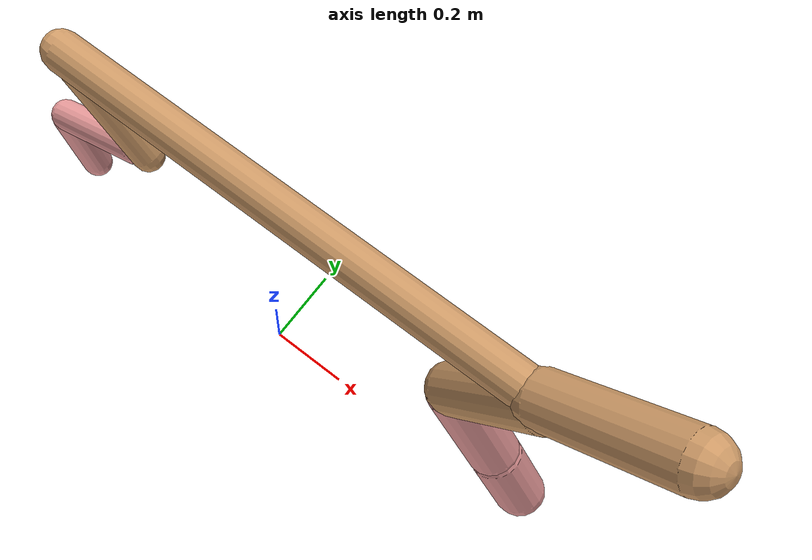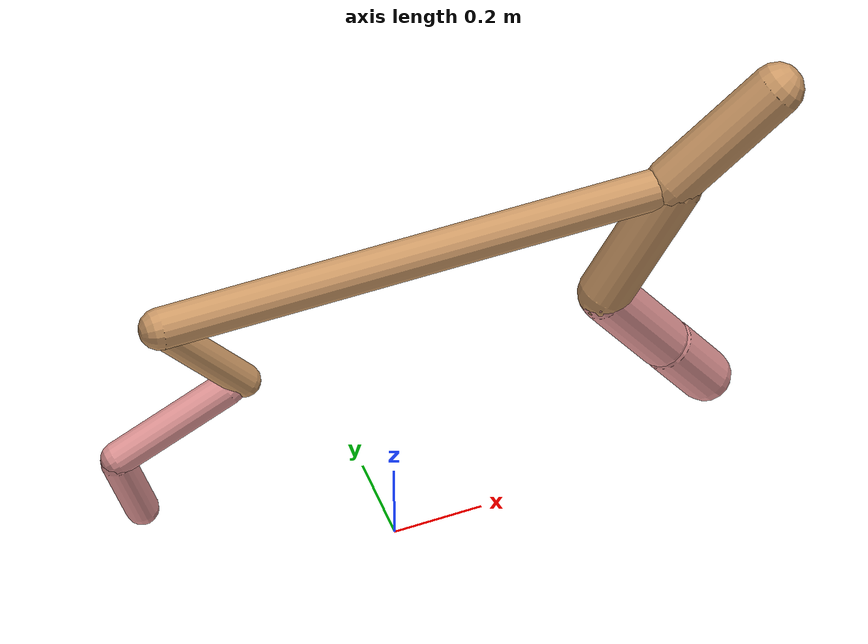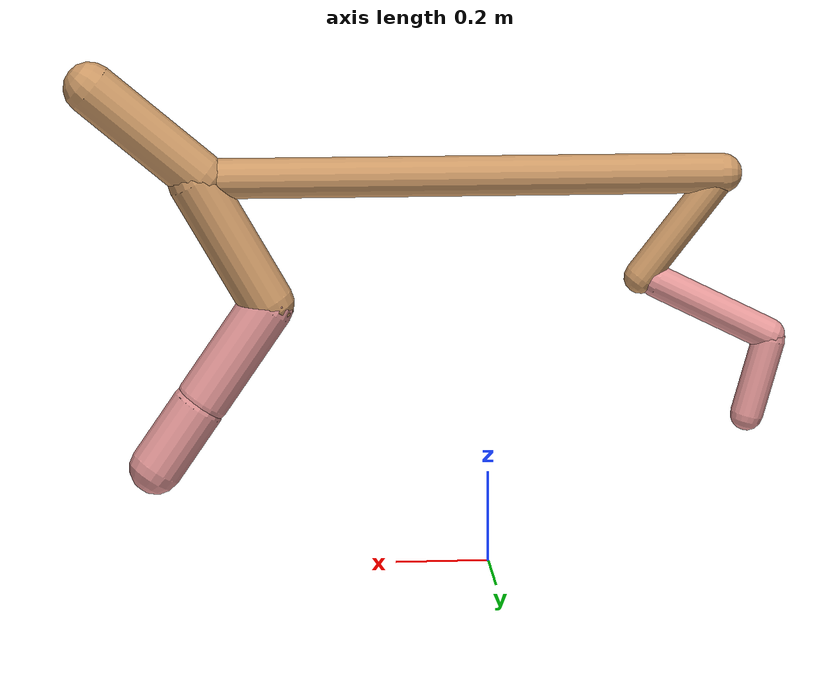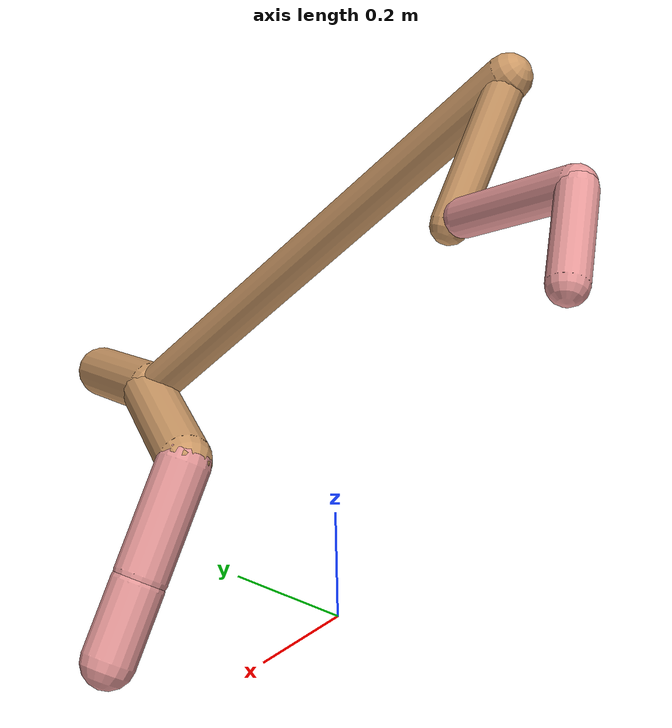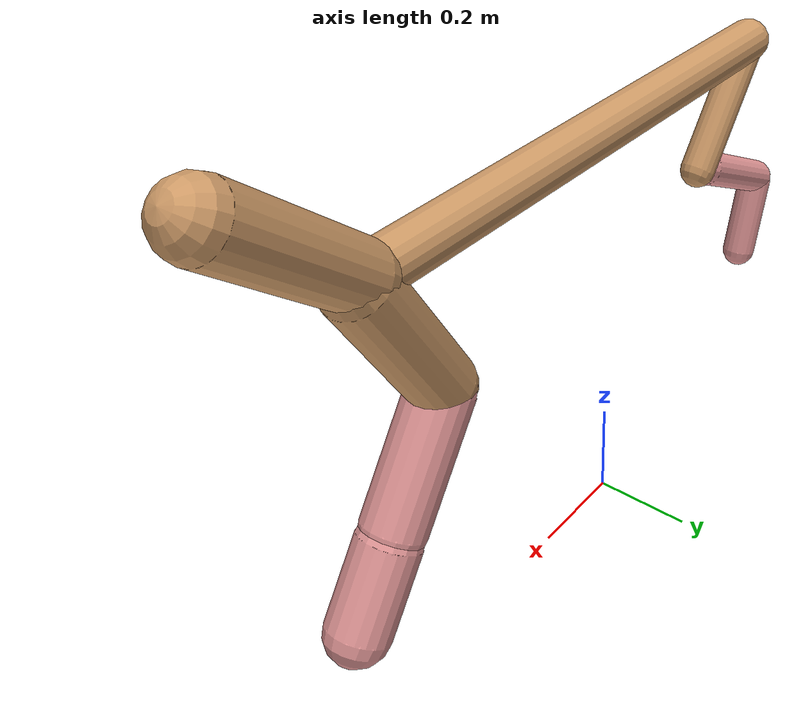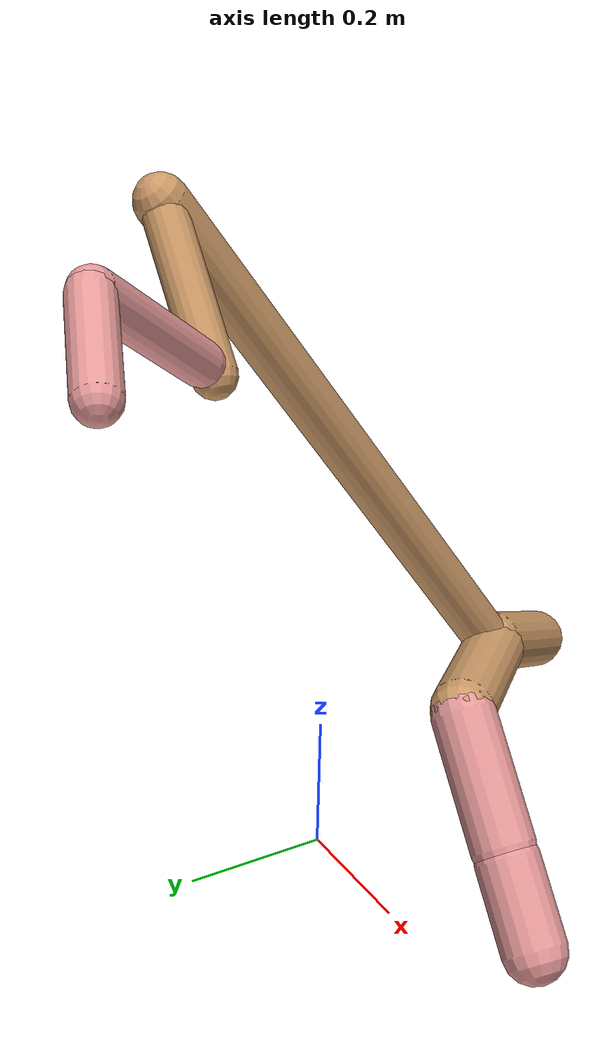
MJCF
<mujoco model="cheetah">
  <compiler angle="radian" coordinate="local" inertiafromgeom="true" settotalmass="14" />
  <default>
    <joint armature=".1" damping=".01" limited="true" solimplimit="0 .8 .03" solreflimit=".02 1" stiffness="8" />
    <geom conaffinity="0" condim="3" contype="1" friction="0.8 .1 .1" rgba="0.8 0.6 .4 1" solimp="0.0 0.8 0.01" solref="0.02 1" />
    <motor ctrllimited="true" ctrlrange="-1 1" />
  </default>
  <size nstack="300000" nuser_geom="1" />
  <option gravity="0 0 -9.81" timestep="0.01" />
  <worldbody>
    <body name="torso" pos="0.0 0.0 0.8496358774039359">
      <joint armature="0" axis="1 0 0" damping="0" limited="false" name="ignorex" pos="0 0 0" stiffness="0" type="slide" />
      <joint armature="0" axis="0 0 1" damping="0" limited="false" name="ignorez" pos="0 0 0" stiffness="0" type="slide" />
      <joint armature="0" axis="0 1 0" damping="0" limited="false" name="ignorey" pos="0 0 0" stiffness="0" type="hinge" />
      <geom fromto="-0.5 0.0 0.0 0.6322019904906283 0.0 0.0" name="torso" size="0.0435943447959098" type="capsule" />
      <geom axisangle="0 1 0 .87" name="head" pos="0.7322019904906284 0.0 0.1" size="0.057013990068145656 0.15" type="capsule" />

      <body name="bthigh" pos="-.5 0 0">
        <joint axis="0 1 0" damping="6" name="bthigh" pos="0 0 0" range="-.52 1.05" stiffness="240" type="hinge" />
        <geom axisangle="0 1 0 -3.8" name="bthigh" pos="0.09228289977257732 0.0 -0.11996776970435052" size="0.03597926622721621 0.13234301455223108" type="capsule" />
        <body name="bshin" pos="0.14456579954515464 0.0 -0.22993553940870104">
          <joint axis="0 1 0" damping="4.5" name="bshin" pos="0 0 0" range="-.785 .785" stiffness="180" type="hinge" />
          <geom axisangle="0 1 0 -2.03" name="bshin" pos="-0.12828887730285368 0.0 -0.06414443865142684" rgba="0.9 0.6 0.6 1" size="0.03597926622721621 0.13690656677817006" type="capsule" />
          <body name="bfoot" pos="-0.25657775460570736 0.0 -0.12828887730285368">
            <joint axis="0 1 0" damping="3" name="bfoot" pos="0 0 0" range="-.4 .785" stiffness="120" type="hinge" />
            <geom axisangle="0 1 0 -.27" name="bfoot" pos="0.027575606466010982 0.0 -0.08916112757343551" rgba="0.9 0.6 0.6 1" size="0.03597926622721621 0.08579478184765325" type="capsule" />
            <inertial mass="10" />
          </body>
        </body>
      </body>
      <body name="fthigh" pos="0.6322019904906284 0.0 0.0">
        <joint axis="0 1 0" damping="4.5" name="fthigh" pos="0 0 0" range="-1.5 0.8" stiffness="180" type="hinge" />
        <geom axisangle="0 1 0 .52" name="fthigh" pos="-0.08048935704954127 0.0 -0.13798175494207074" size="0.058332062823192164 0.1538175436137275" type="capsule" />
        <body name="fshin" pos="-0.16097871409908254 0.0 -0.2759635098841415">
          <joint axis="0 1 0" damping="3" name="fshin" pos="0 0 0" range="-1.2 1.1" stiffness="120" type="hinge" />
          <geom axisangle="0 1 0 -.6" name="fshin" pos="0.07471412304397385 0.0 -0.10345032421473302" rgba="0.9 0.6 0.6 1" size="0.058332062823192164 0.1225914257372565" type="capsule" />
          <body name="ffoot" pos="0.1494282460879477 0.0 -0.20690064842946604">
            <joint axis="0 1 0" damping="1.5" name="ffoot" pos="0 0 0" range="-3.1 -0.3" stiffness="60" type="hinge" />
            <geom axisangle="0 1 0 -.6" name="ffoot" pos="0.05092486565348578 0.0 -0.07921645768320011" rgba="0.9 0.6 0.6 1" size="0.058332062823192164 0.08095660190196184" type="capsule" />
            <inertial mass="10" />
          </body>
        </body>
      </body>
    </body>
  </worldbody>
  <actuator>
    <motor gear="120" joint="bthigh" name="bthigh" />
    <motor gear="90" joint="bshin" name="bshin" />
    <motor gear="60" joint="bfoot" name="bfoot" />
    <motor gear="120" joint="fthigh" name="fthigh" />
    <motor gear="60" joint="fshin" name="fshin" />
    <motor gear="30" joint="ffoot" name="ffoot" />
  </actuator>
</mujoco>
